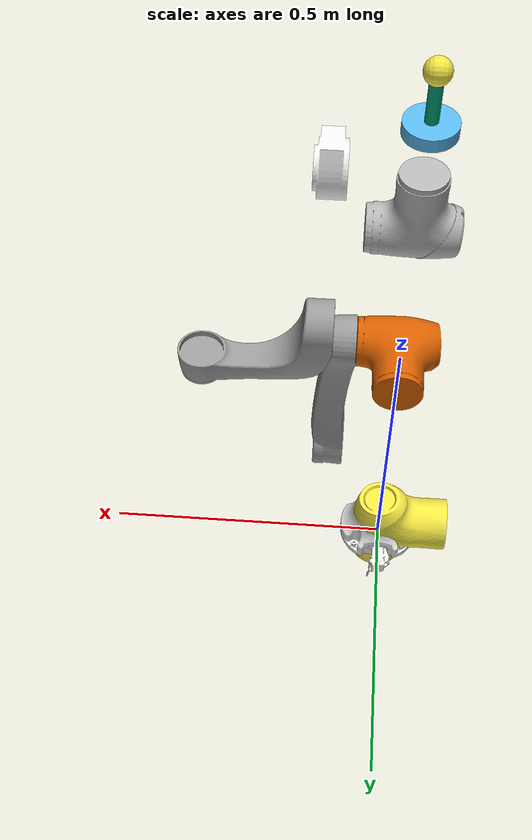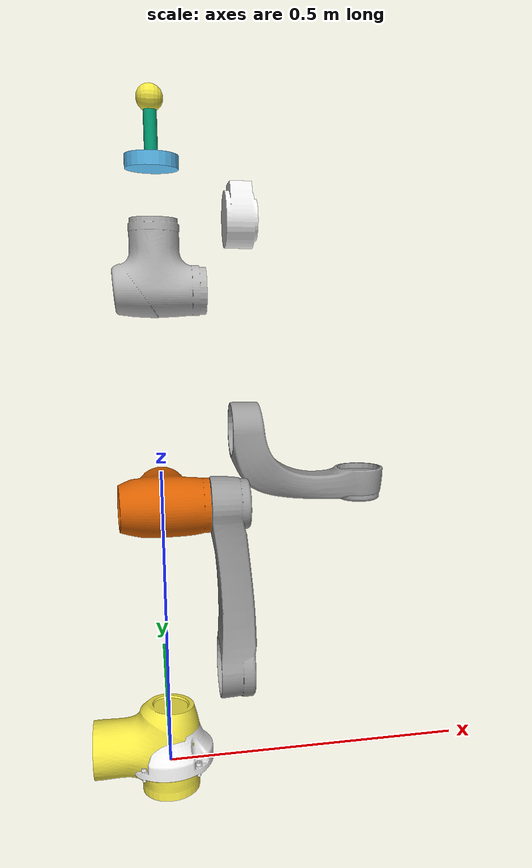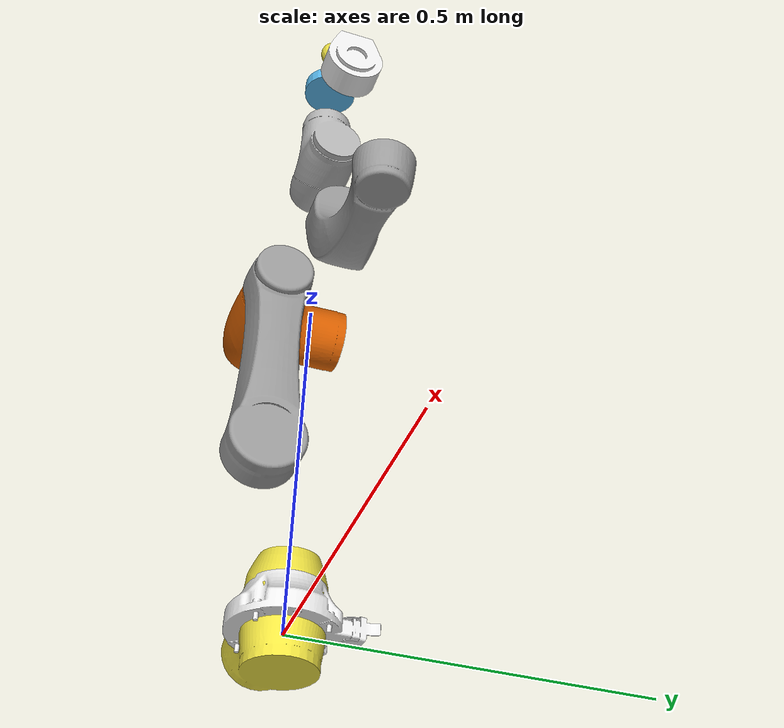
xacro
<robot
  name="elfin3" xmlns:xacro="http://www.ros.org/wiki/xacro">

  <xacro:include filename="$(find elfin_description)/urdf/materials.xacro" />

  <xacro:include filename="$(find elfin_description)/urdf/elfin_robot_experiment1.gazebo" />

  <xacro:include filename="$(find elfin_description)/urdf/elfin_transmission_experiment1.xacro" />

  <xacro:property name="PI" value="3.1415926535897931"/>

  <link name="world"/>

  <joint name="world_base" type="fixed">
    <origin
      xyz="0 0 0"
      rpy="0 0 0" />
    <parent
      link="world" />
    <child
      link="elfin_base_link" />
  </joint>

  <link name="elfin_base_link"/>

  <joint name="elfin_base_joint" type="fixed">
    <origin
      xyz="0 0 0"
      rpy="0 0 ${PI/2}" />
    <parent
      link="elfin_base_link" />
    <child
      link="elfin_base" />
  </joint>

  <link
    name="elfin_base">
    <inertial>
      <origin
        xyz="-0.0319402056221453 0.427120668618383 -5.39351164605318E-06"
        rpy="0 0 0" />
      <mass
        value="4.3052612459755" />
      <inertia
        ixx="0.291480854811486"
        ixy="-0.00222433961096429"
        ixz="-2.01923964457691E-06"
        iyy="0.0113685309214344"
        iyz="-3.62155285906403E-06"
        izz="0.298007263296196" />
    </inertial>
    <visual>
      <origin
        xyz="0 0 0"
        rpy="0 0 0" />
      <geometry>
        <mesh
          filename="package://elfin_description/meshes/elfin3/elfin_base.STL" />
      </geometry>
      <material
        name="metal_white"/>
    </visual>
    <collision>
      <origin
        xyz="0 0 0"
        rpy="0 0 0" />
      <geometry>
        <mesh
          filename="package://elfin_description/meshes/elfin3/elfin_base.STL" />
      </geometry>
    </collision>
  </link>
  <link
    name="elfin_link1">
    <inertial>
      <origin
        xyz="-0.0192918165822649 0.120142940373248 -9.33059379656128E-06"
        rpy="0 0 0" />
      <mass
        value="1.52637984956046" />
      <inertia
        ixx="0.00527544044696735"
        ixy="0.00123465778378514"
        ixz="-6.71312813911233E-07"
        iyy="0.00317642212936588"
        iyz="-3.23660070050034E-07"
        izz="0.00651212770034193" />
    </inertial>
    <visual>
      <origin
        xyz="0 0 0"
        rpy="0 0 0" />
      <geometry>
        <mesh
          filename="package://elfin_description/meshes/elfin3/elfin_link1.STL" />
      </geometry>
      <material
        name="metal"/>
    </visual>
    <collision>
      <origin
        xyz="0 0 0"
        rpy="0 0 0" />
      <geometry>
        <mesh
          filename="package://elfin_description/meshes/elfin3/elfin_link1.STL" />
      </geometry>
    </collision>
  </link>
  <joint
    name="elfin_joint1"
    type="revolute">
    <origin
      xyz="0 0 0.031"
      rpy="${PI/2} 0 0" />
    <parent
      link="elfin_base" />
    <child
      link="elfin_link1" />
    <axis
      xyz="0 1 0" />
    <dynamics
      damping="1"
      friction="1" />
    <limit
      lower="-3.14"
      upper="3.14"
      effort="120"
      velocity="1.57" />
  </joint>
  <link
    name="elfin_link2">
    <inertial>
      <origin
        xyz="-0.036466516774824 0.121897297057332 -2.81161718183357E-05"
        rpy="0 0 0" />
      <mass
        value="0.519454683951505" />
      <inertia
        ixx="0.00565995615696724"
        ixy="-0.000264286704227211"
        ixz="9.00238413174917E-08"
        iyy="0.000537503501646015"
        iyz="2.30075042384658E-06"
        izz="0.00546582402574428" />
    </inertial>
    <visual>
      <origin
        xyz="0 0 0"
        rpy="0 0 0" />
      <geometry>
        <mesh
          filename="package://elfin_description/meshes/elfin3/elfin_link2.STL" />
      </geometry>
      <material
        name="metal_grey"/>
    </visual>
    <collision>
      <origin
        xyz="0 0 0"
        rpy="0 0 0" />
      <geometry>
        <mesh
          filename="package://elfin_description/meshes/elfin3/elfin_link2.STL" />
      </geometry>
    </collision>
  </link>
  <joint
    name="elfin_joint2"
    type="revolute">
    <origin
      xyz="-0.068808 0.1615 0"
      rpy="0 0 0" />
    <parent
      link="elfin_link1" />
    <child
      link="elfin_link2" />
    <axis
      xyz="-1 0 0" />
    <dynamics
      damping="1"
      friction="1" />
    <limit
      lower="-2.35"
      upper="2.35"
      effort="120"
      velocity="1.57" />
  </joint>
  <link
    name="elfin_link3">
    <inertial>
      <origin
        xyz="0.0512991448419209 -0.0377654897323815 -7.04730066125333E-06"
        rpy="0 0 0" />
      <mass
        value="1.07922053966635" />
      <inertia
        ixx="0.00298738624023049"
        ixy="0.000725824493179576"
        ixz="4.96115488717236E-07"
        iyy="0.00183400941739145"
        iyz="-2.66433909735348E-07"
        izz="0.00375395532323906" />
    </inertial>
    <visual>
      <origin
        xyz="0 0 0"
        rpy="0 0 0" />
      <geometry>
        <mesh
          filename="package://elfin_description/meshes/elfin3/elfin_link3.STL" />
      </geometry>
      <material
        name="metal"/>
    </visual>
    <collision>
      <origin
        xyz="0 0 0"
        rpy="0 0 0" />
      <geometry>
        <mesh
          filename="package://elfin_description/meshes/elfin3/elfin_link3.STL" />
      </geometry>
    </collision>
  </link>
  <joint
    name="elfin_joint3"
    type="revolute">
    <origin
      xyz="0 0.266 0"
      rpy="${-PI} 0 0" />
    <parent
      link="elfin_link2" />
    <child
      link="elfin_link3" />
    <axis
      xyz="1 0 0" />
    <dynamics
      damping="1"
      friction="1" />
    <limit
      lower="-2.61"
      upper="2.61"
      effort="120"
      velocity="1.57" />
  </joint>
  <link
    name="elfin_link4">
    <inertial>
      <origin
        xyz="-0.0583601900884385 0.100119219162888 -3.33183498268088E-07"
        rpy="0 0 0" />
      <mass
        value="0.369677539276185" />
      <inertia
        ixx="0.00237292271100579"
        ixy="0.000824081879058636"
        ixz="-8.45848544546041E-09"
        iyy="0.000956009074525509"
        iyz="-3.93294162811061E-09"
        izz="0.00283923133217817" />
    </inertial>
    <visual>
      <origin
        xyz="0 0 0"
        rpy="0 0 0" />
      <geometry>
        <mesh
          filename="package://elfin_description/meshes/elfin3/elfin_link4.STL" />
      </geometry>
      <material
        name="metal_grey"/>
    </visual>
    <collision>
      <origin
        xyz="0 0 0"
        rpy="0 0 0" />
      <geometry>
        <mesh
          filename="package://elfin_description/meshes/elfin3/elfin_link4.STL" />
      </geometry>
    </collision>
  </link>
  <joint
    name="elfin_joint4"
    type="revolute">
    <origin
      xyz="0.068808 -0.10523 0"
      rpy="${PI} 0 0" />
    <parent
      link="elfin_link3" />
    <child
      link="elfin_link4" />
    <axis
      xyz="0 1 0" />
    <dynamics
      damping="1"
      friction="1" />
    <limit
      lower="-3.14"
      upper="3.14"
      effort="120"
      velocity="1.57" />
  </joint>
  <link
    name="elfin_link5">
    <inertial>
      <origin
        xyz="-0.0159268625326372 -0.0365461558991834 2.29158666616884E-06"
        rpy="0 0 0" />
      <mass
        value="0.81052865799498" />
      <inertia
        ixx="0.00195203104787827"
        ixy="0.000475249185078403"
        ixz="-4.08714933153791E-08"
        iyy="0.0011361781195507"
        iyz="1.7320616235908E-08"
        izz="0.00247459893149932" />
    </inertial>
    <visual>
      <origin
        xyz="0 0 0"
        rpy="0 0 0" />
      <geometry>
        <mesh
          filename="package://elfin_description/meshes/elfin3/elfin_link5.STL" />
      </geometry>
      <material
        name="metal"/>
    </visual>
    <collision>
      <origin
        xyz="0 0 0"
        rpy="0 0 0" />
      <geometry>
        <mesh
          filename="package://elfin_description/meshes/elfin3/elfin_link5.STL" />
      </geometry>
    </collision>
  </link>
  <joint
    name="elfin_joint5"
    type="revolute">
    <origin
      xyz="0 0.21877 0"
      rpy="${-PI} 0 0" />
    <parent
      link="elfin_link4" />
    <child
      link="elfin_link5" />
    <axis
      xyz="1 0 0" />
    <dynamics
      damping="1"
      friction="1" />
    <limit
      lower="-2.56"
      upper="2.56"
      effort="120"
      velocity="1.57" />
  </joint>
  <link
    name="elfin_link6">
    <inertial>
      <origin
        xyz="0.0219175619250529 0.461879324434722 -0.0232335370431645"
        rpy="0 0 0" />
      <mass
        value="4.3052612459755" />
      <inertia
        ixx="0.294935032119192"
        ixy="-0.0015239945221609"
        ixz="0.0032576119002927"
        iyy="0.0113685309214282"
        iyz="0.00162022853851308"
        izz="0.294553085988403" />
    </inertial>
    <visual>
      <origin
        xyz="0 0 0"
        rpy="0 0 0" />
      <geometry>
        <mesh
          filename="package://elfin_description/meshes/elfin3/elfin_link6.STL" />
      </geometry>
      <material
        name="metal_white"/>
    </visual>
    <collision>
      <origin
        xyz="0 0 0"
        rpy="0 0 0" />
      <geometry>
        <mesh
          filename="package://elfin_description/meshes/elfin3/elfin_link6.STL" />
      </geometry>
    </collision>
  </link>
  <joint
    name="elfin_joint6"
    type="revolute">
    <origin
      xyz="0 -0.1065 0"
      rpy="${-PI} 0 ${-PI}" />
    <parent
      link="elfin_link5" />
    <child
      link="elfin_link6" />
    <axis
      xyz="0 -1 0" />
    <dynamics
      damping="1"
      friction="1" />
    <limit
      lower="-3.14"
      upper="3.14"
      effort="120"
      velocity="1.57" />
  </joint>

  <link name="elfin_ft_sensor_link">
    <collision>
      <origin xyz="0 0 0" rpy="${PI/2} 0 0"/>
      <geometry>
        <cylinder length="0.02" radius="0.04"/>
      </geometry>
    </collision>

    <visual>
      <origin xyz="0 0 0" rpy="${PI/2} 0 0" />
      <geometry>
        <cylinder length="0.02" radius="0.04"/>
      </geometry>
    </visual>

    <inertial>
      <mass value="0.01" />
      <origin xyz="0 0 0" rpy="0 0 0"/>
      <inertia ixx="0.01" ixy="0" ixz="0" iyy="0.01" iyz="0" izz="0.01" />
    </inertial>
  </link>

  <joint name="ft_sensor_joint" type="revolute">
    <parent link="elfin_link6"/>
    <child link="elfin_ft_sensor_link"/>
    <origin xyz="0 -0.08 0" rpy="0 0 0" />
    <axis xyz="0 -1 0"/>
    <limit
      lower="0.0"
      upper="0.0"
      effort="0.0"
      velocity="0.0" />
  </joint>

  <link name="elfin_tool">
    <collision>
      <origin xyz="0 0 0" rpy="${PI/2} 0 0"/>
      <geometry>
        <cylinder length="0.08" radius="0.01"/>
      </geometry>
    </collision>

    <visual>
      <origin xyz="0 0 0" rpy="${PI/2} 0 0" />
      <geometry>
        <cylinder length="0.08" radius="0.01"/>
      </geometry>
    </visual>

    <inertial>
      <mass value="0.01" />
      <origin xyz="0 0 0" rpy="0 0 0"/>
      <inertia ixx="0.01" ixy="0" ixz="0" iyy="0.01" iyz="0" izz="0.01" />
    </inertial>
  </link>

  <joint name="tool_joint" type="fixed">
    <parent link="elfin_ft_sensor_link"/>
    <child link="elfin_tool"/>
    <origin xyz="0 -0.05 0" rpy="0 0 0" />
  </joint>

  <link name="elfin_tool_ball">
    <collision>
      <origin xyz="0 0 0" rpy="0 0 0"/>
      <geometry>
        <sphere radius="0.02"/>
      </geometry>
    </collision>

    <visual>
      <origin xyz="0 0 0" rpy="0 0 0" />
      <geometry>
        <sphere radius="0.02"/>
      </geometry>
    </visual>

    <inertial>
      <mass value="0.01" />
      <origin xyz="0 0 0" rpy="0 0 0"/>
      <inertia ixx="0.01" ixy="0" ixz="0" iyy="0.01" iyz="0" izz="0.01" />
    </inertial>
  </link>

  <joint name="tool_ball_joint" type="fixed">
    <parent link="elfin_tool"/>
    <child link="elfin_tool_ball"/>
    <origin xyz="0 -0.04 0" rpy="0 0 0" />
  </joint>

</robot>
